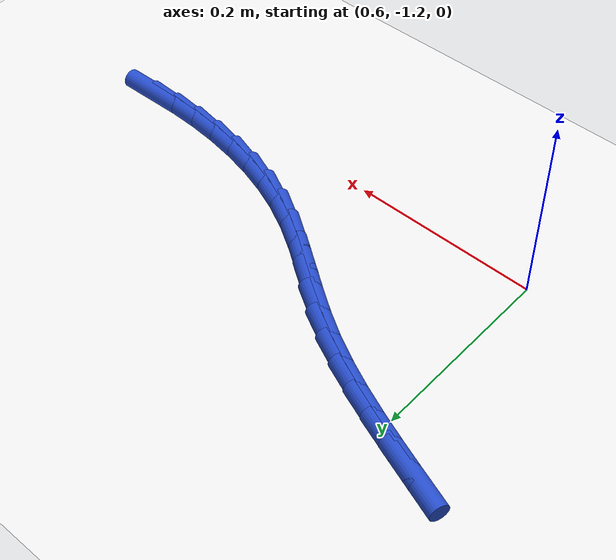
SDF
<sdf version="1.6">
 <world name="default">
  <model name="ground_plane">
   <static>1</static>
   <link name="link">
    <collision name="collision">
     <geometry><plane><normal>0 0 1</normal><size>100 100</size></plane></geometry>
     <surface><friction><ode><mu>100</mu><mu2>50</mu2></ode></friction></surface>
    </collision>
    <visual name="visual">
     <cast_shadows>0</cast_shadows>
     <geometry><plane><normal>0 0 1</normal><size>100 100</size></plane></geometry>
     <material>
      <script><uri>file://media/materials/scripts/gazebo.material</uri><name>Gazebo/WhiteGlow</name></script>
     </material>
    </visual>
   </link>
  </model>
  <model name="line">
   <link name="link_173">
    <pose>1.0551724393329052 -1.1577943840650387 0.01 0 1.57 0.021729866630142213</pose>
    <collision name="collision">
     <geometry><cylinder><radius>0.01</radius><length>0.08</length></cylinder></geometry>
    </collision>
    <visual name="visual">
     <material>
      <script><name>Gazebo/Blue</name><uri>file://media/materials/scripts/gazebo.material</uri></script>
     </material>
     <geometry><cylinder><radius>0.01</radius><length>0.08</length></cylinder></geometry>
    </visual>
   </link>
   <link name="link_174">
    <pose>1.0235969957246884 -1.1584806222577746 0.01 0 1.57 -0.03404708742027763</pose>
    <collision name="collision">
     <geometry><cylinder><radius>0.01</radius><length>0.08</length></cylinder></geometry>
    </collision>
    <visual name="visual">
     <material>
      <script><name>Gazebo/Blue</name><uri>file://media/materials/scripts/gazebo.material</uri></script>
     </material>
     <geometry><cylinder><radius>0.01</radius><length>0.08</length></cylinder></geometry>
    </visual>
   </link>
   <link name="link_175">
    <pose>0.9922040178004983 -1.1574113696013644 0.01 0 1.57 -0.09384779667735103</pose>
    <collision name="collision">
     <geometry><cylinder><radius>0.01</radius><length>0.08</length></cylinder></geometry>
    </collision>
    <visual name="visual">
     <material>
      <script><name>Gazebo/Blue</name><uri>file://media/materials/scripts/gazebo.material</uri></script>
     </material>
     <geometry><cylinder><radius>0.01</radius><length>0.08</length></cylinder></geometry>
    </visual>
   </link>
   <link name="link_176">
    <pose>0.9611660876834383 -1.1544899464836151 0.01 0 1.57 -0.15829172738552322</pose>
    <collision name="collision">
     <geometry><cylinder><radius>0.01</radius><length>0.08</length></cylinder></geometry>
    </collision>
    <visual name="visual">
     <material>
      <script><name>Gazebo/Blue</name><uri>file://media/materials/scripts/gazebo.material</uri></script>
     </material>
     <geometry><cylinder><radius>0.01</radius><length>0.08</length></cylinder></geometry>
    </visual>
   </link>
   <link name="link_177">
    <pose>0.9306557874966102 -1.149619673292334 0.01 0 1.57 -0.22796269264225102</pose>
    <collision name="collision">
     <geometry><cylinder><radius>0.01</radius><length>0.08</length></cylinder></geometry>
    </collision>
    <visual name="visual">
     <material>
      <script><name>Gazebo/Blue</name><uri>file://media/materials/scripts/gazebo.material</uri></script>
     </material>
     <geometry><cylinder><radius>0.01</radius><length>0.08</length></cylinder></geometry>
    </visual>
   </link>
   <link name="link_178">
    <pose>0.9008456993631164 -1.1427038704153285 0.01 0 1.57 -0.3033604365232932</pose>
    <collision name="collision">
     <geometry><cylinder><radius>0.01</radius><length>0.08</length></cylinder></geometry>
    </collision>
    <visual name="visual">
     <material>
      <script><name>Gazebo/Blue</name><uri>file://media/materials/scripts/gazebo.material</uri></script>
     </material>
     <geometry><cylinder><radius>0.01</radius><length>0.08</length></cylinder></geometry>
    </visual>
   </link>
   <link name="link_179">
    <pose>0.8719084054060587 -1.1336458582404052 0.01 0 1.57 -0.38483004934165327</pose>
    <collision name="collision">
     <geometry><cylinder><radius>0.01</radius><length>0.08</length></cylinder></geometry>
    </collision>
    <visual name="visual">
     <material>
      <script><name>Gazebo/Blue</name><uri>file://media/materials/scripts/gazebo.material</uri></script>
     </material>
     <geometry><cylinder><radius>0.01</radius><length>0.08</length></cylinder></geometry>
    </visual>
   </link>
   <link name="link_180">
    <pose>0.8440164877485408 -1.1223489571553718 0.01 0 1.57 -0.4723475230371439</pose>
    <collision name="collision">
     <geometry><cylinder><radius>0.01</radius><length>0.08</length></cylinder></geometry>
    </collision>
    <visual name="visual">
     <material>
      <script><name>Gazebo/Blue</name><uri>file://media/materials/scripts/gazebo.material</uri></script>
     </material>
     <geometry><cylinder><radius>0.01</radius><length>0.08</length></cylinder></geometry>
    </visual>
   </link>
   <link name="link_181">
    <pose>0.8173402959695029 -1.1087194857243563 0.01 0 1.57 -0.5527617691014749</pose>
    <collision name="collision">
     <geometry><cylinder><radius>0.01</radius><length>0.08</length></cylinder></geometry>
    </collision>
    <visual name="visual">
     <material>
      <script><name>Gazebo/Blue</name><uri>file://media/materials/scripts/gazebo.material</uri></script>
     </material>
     <geometry><cylinder><radius>0.01</radius><length>0.08</length></cylinder></geometry>
    </visual>
   </link>
   <link name="link_182">
    <pose>0.7918185512828658 -1.09297482586733 0.01 0 1.57 -0.6015688643093624</pose>
    <collision name="collision">
     <geometry><cylinder><radius>0.01</radius><length>0.08</length></cylinder></geometry>
    </collision>
    <visual name="visual">
     <material>
      <script><name>Gazebo/Blue</name><uri>file://media/materials/scripts/gazebo.material</uri></script>
     </material>
     <geometry><cylinder><radius>0.01</radius><length>0.08</length></cylinder></geometry>
    </visual>
   </link>
   <link name="link_183">
    <pose>0.7669594725160989 -1.0759104990469686 0.01 0 1.57 -0.6164280608066339</pose>
    <collision name="collision">
     <geometry><cylinder><radius>0.01</radius><length>0.08</length></cylinder></geometry>
    </collision>
    <visual name="visual">
     <material>
      <script><name>Gazebo/Blue</name><uri>file://media/materials/scripts/gazebo.material</uri></script>
     </material>
     <geometry><cylinder><radius>0.01</radius><length>0.08</length></cylinder></geometry>
    </visual>
   </link>
   <link name="link_184">
    <pose>0.7422244147354968 -1.0583849620180783 0.01 0 1.57 -0.5978970146721876</pose>
    <collision name="collision">
     <geometry><cylinder><radius>0.01</radius><length>0.08</length></cylinder></geometry>
    </collision>
    <visual name="visual">
     <material>
      <script><name>Gazebo/Blue</name><uri>file://media/materials/scripts/gazebo.material</uri></script>
     </material>
     <geometry><cylinder><radius>0.01</radius><length>0.08</length></cylinder></geometry>
    </visual>
   </link>
   <link name="link_185">
    <pose>0.7170747330073564 -1.0412566715354659 0.01 0 1.57 -0.5470558678804999</pose>
    <collision name="collision">
     <geometry><cylinder><radius>0.01</radius><length>0.08</length></cylinder></geometry>
    </collision>
    <visual name="visual">
     <material>
      <script><name>Gazebo/Blue</name><uri>file://media/materials/scripts/gazebo.material</uri></script>
     </material>
     <geometry><cylinder><radius>0.01</radius><length>0.08</length></cylinder></geometry>
    </visual>
   </link>
   <link name="link_186">
    <pose>0.6909840946999075 -1.0253658636675973 0.01 0 1.57 -0.4846537177624122</pose>
    <collision name="collision">
     <geometry><cylinder><radius>0.01</radius><length>0.08</length></cylinder></geometry>
    </collision>
    <visual name="visual">
     <material>
      <script><name>Gazebo/Blue</name><uri>file://media/materials/scripts/gazebo.material</uri></script>
     </material>
     <geometry><cylinder><radius>0.01</radius><length>0.08</length></cylinder></geometry>
    </visual>
   </link>
   <link name="link_187">
    <pose>0.6637736872337363 -1.0110384877229377 0.01 0 1.57 -0.4333561297191994</pose>
    <collision name="collision">
     <geometry><cylinder><radius>0.01</radius><length>0.08</length></cylinder></geometry>
    </collision>
    <visual name="visual">
     <material>
      <script><name>Gazebo/Blue</name><uri>file://media/materials/scripts/gazebo.material</uri></script>
     </material>
     <geometry><cylinder><radius>0.01</radius><length>0.08</length></cylinder></geometry>
    </visual>
   </link>
   <link name="link_188">
    <pose>0.6356522321648398 -0.998026990348618 0.01 0 1.57 -0.39395804230369513</pose>
    <collision name="collision">
     <geometry><cylinder><radius>0.01</radius><length>0.08</length></cylinder></geometry>
    </collision>
    <visual name="visual">
     <material>
      <script><name>Gazebo/Blue</name><uri>file://media/materials/scripts/gazebo.material</uri></script>
     </material>
     <geometry><cylinder><radius>0.01</radius><length>0.08</length></cylinder></geometry>
    </visual>
   </link>
   <link name="link_189">
    <pose>0.6068487959755581 -0.9860537102133138 0.01 0 1.57 -0.3659906453346252</pose>
    <collision name="collision">
     <geometry><cylinder><radius>0.01</radius><length>0.08</length></cylinder></geometry>
    </collision>
    <visual name="visual">
     <material>
      <script><name>Gazebo/Blue</name><uri>file://media/materials/scripts/gazebo.material</uri></script>
     </material>
     <geometry><cylinder><radius>0.01</radius><length>0.08</length></cylinder></geometry>
    </visual>
   </link>
   <link name="link_190">
    <pose>0.5775924451482293 -0.9748409859856987 0.01 0 1.57 -0.34906329603477687</pose>
    <collision name="collision">
     <geometry><cylinder><radius>0.01</radius><length>0.08</length></cylinder></geometry>
    </collision>
    <visual name="visual">
     <material>
      <script><name>Gazebo/Blue</name><uri>file://media/materials/scripts/gazebo.material</uri></script>
     </material>
     <geometry><cylinder><radius>0.01</radius><length>0.08</length></cylinder></geometry>
    </visual>
   </link>
   <link name="link_191">
    <pose>0.5481122461651923 -0.9641111563344468 0.01 0 1.57 -0.34295827227758496</pose>
    <collision name="collision">
     <geometry><cylinder><radius>0.01</radius><length>0.08</length></cylinder></geometry>
    </collision>
    <visual name="visual">
     <material>
      <script><name>Gazebo/Blue</name><uri>file://media/materials/scripts/gazebo.material</uri></script>
     </material>
     <geometry><cylinder><radius>0.01</radius><length>0.08</length></cylinder></geometry>
    </visual>
   </link>
  </model>
 </world>
</sdf>
